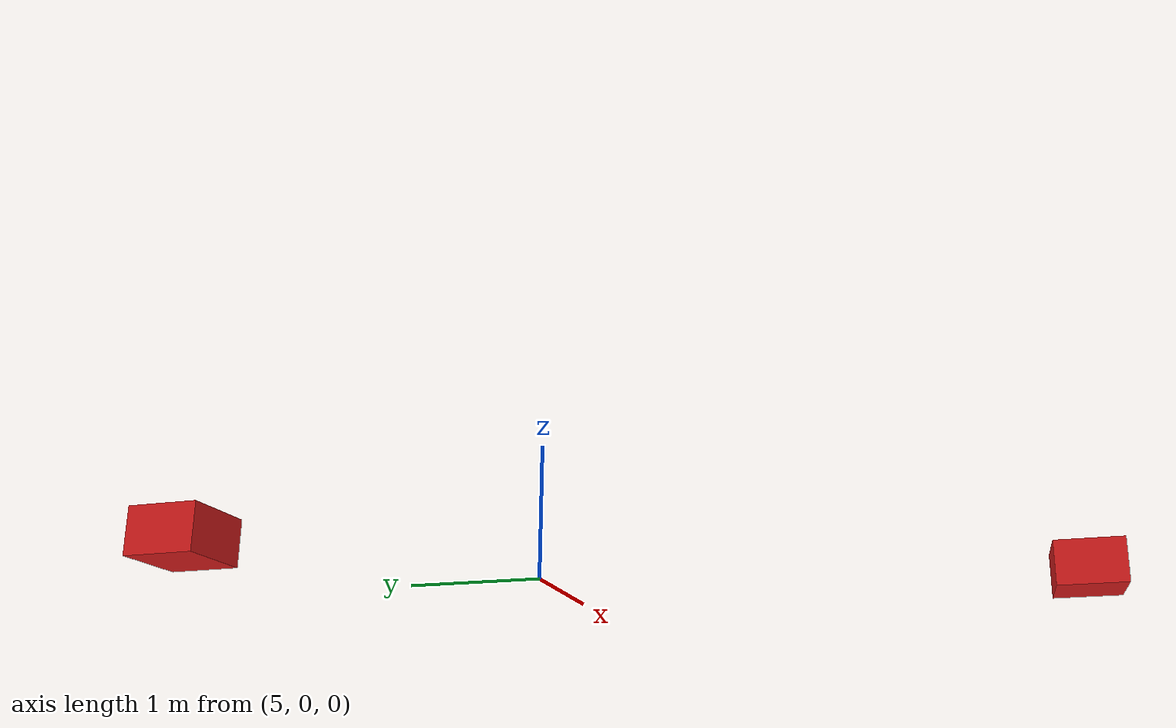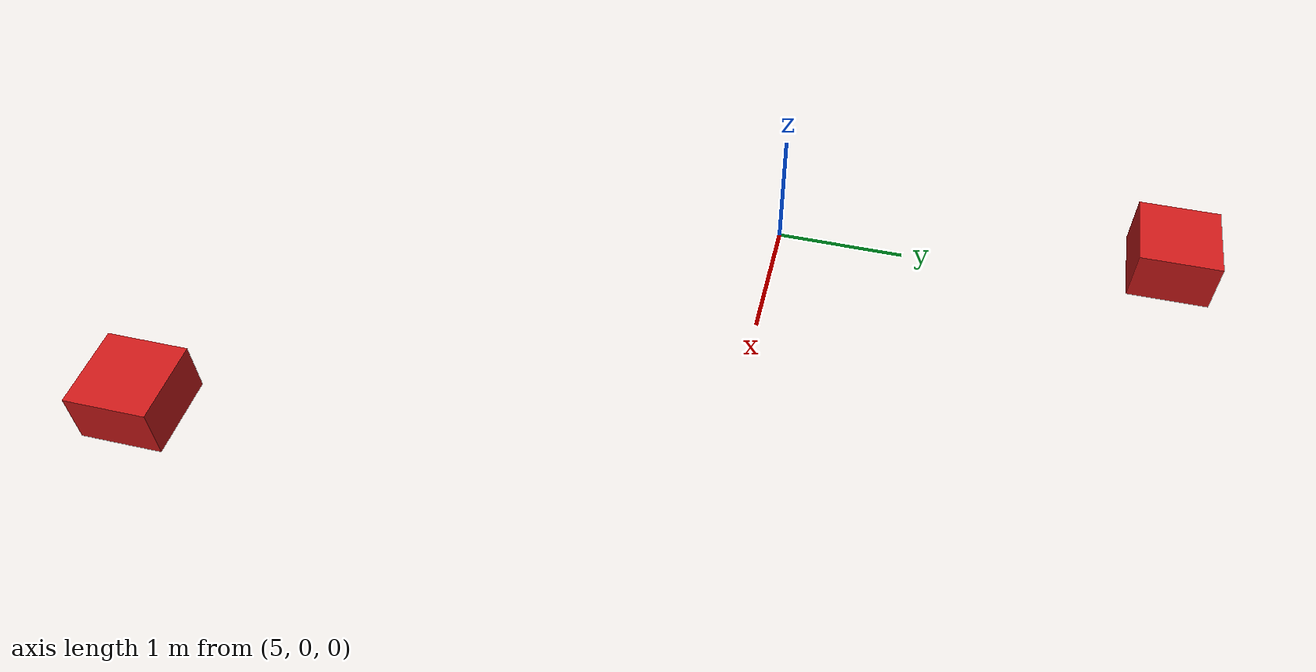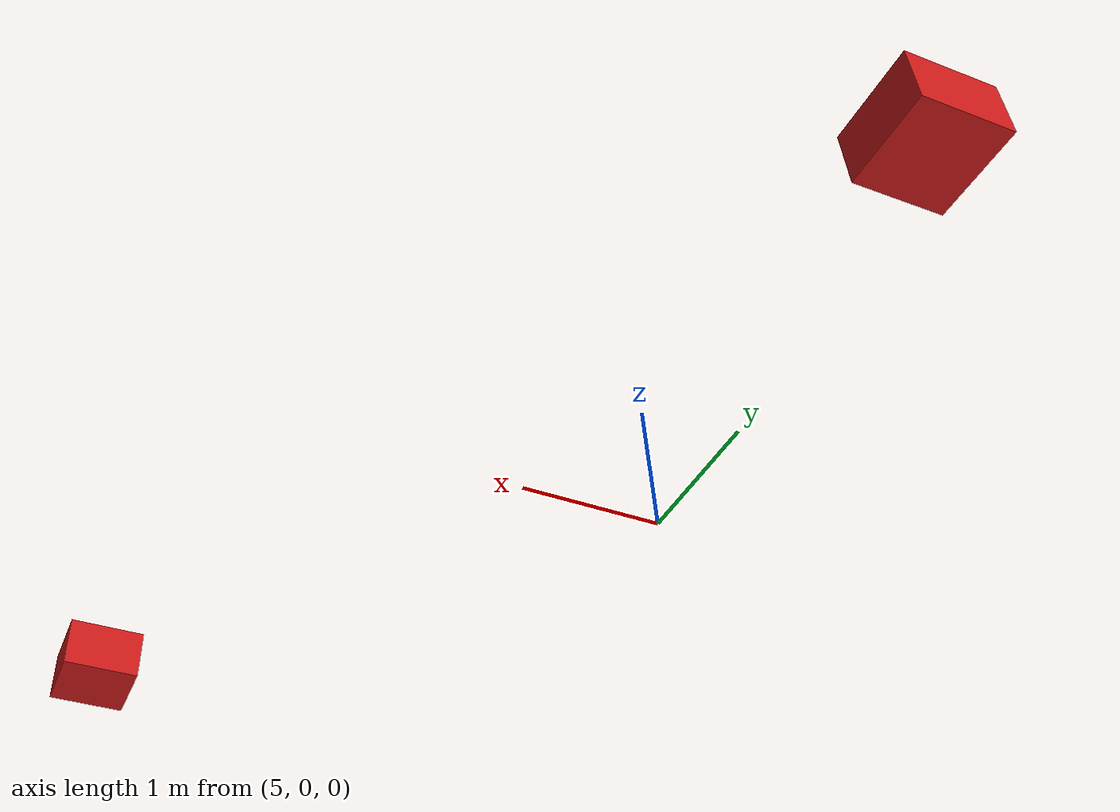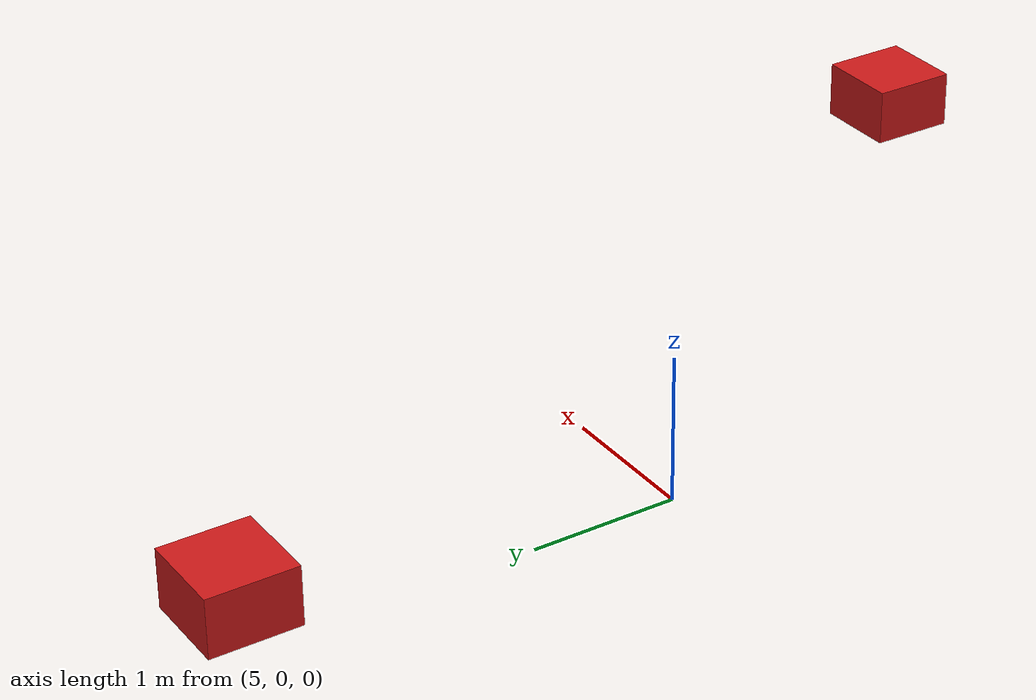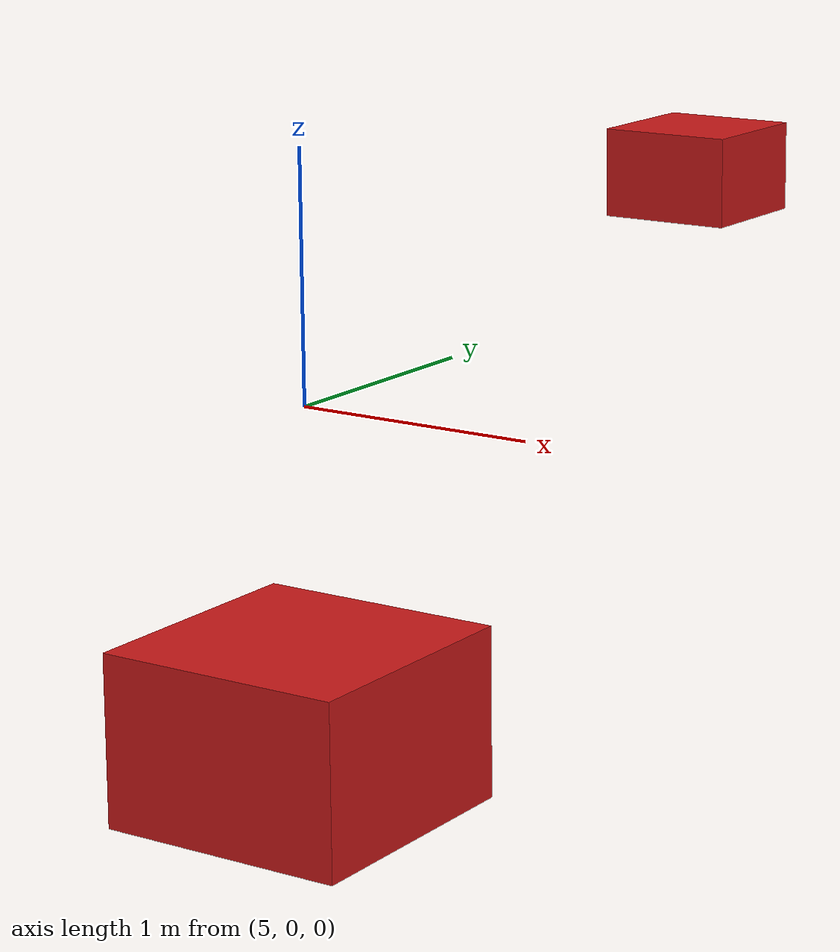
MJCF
<mujoco>
    <default>
        <default class="enemy_rammer">
            <geom type="box" size="0.3 0.3 0.2" rgba="0.8 0.1 0.1 1" mass="15"/>
        </default>
    </default>

    <worldbody>
        <body name="enemy_1" pos="5 3 0.5">
            <joint type="free"/>
            <geom class="enemy_rammer"/>
        </body>

        <body name="enemy_2" pos="8 -4 0.5">
            <joint type="free"/>
            <geom class="enemy_rammer"/>
        </body>

        </worldbody>
</mujoco>
